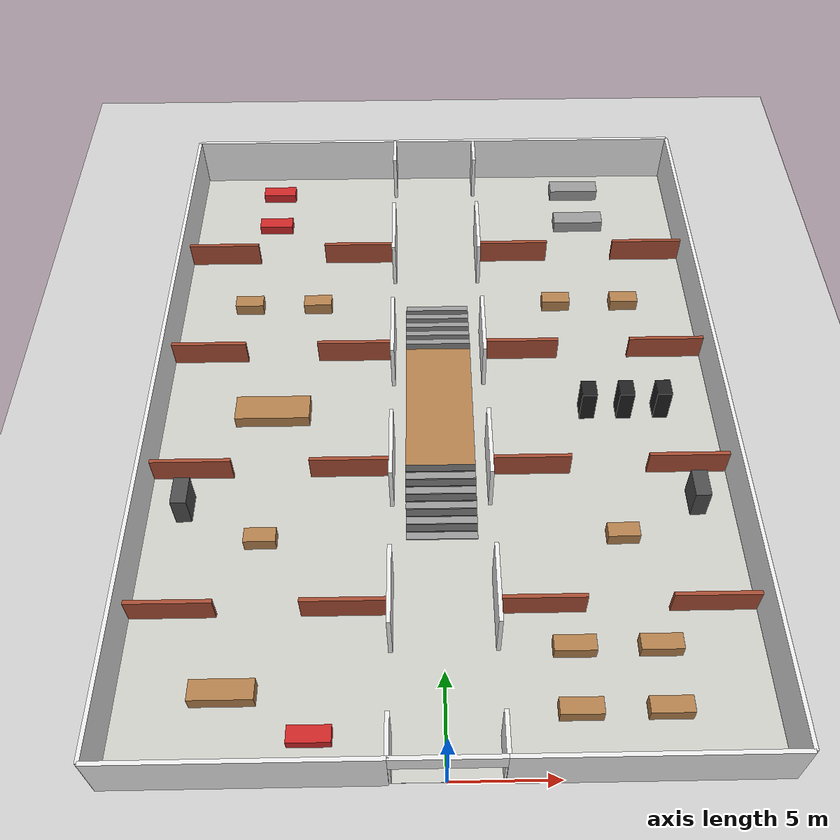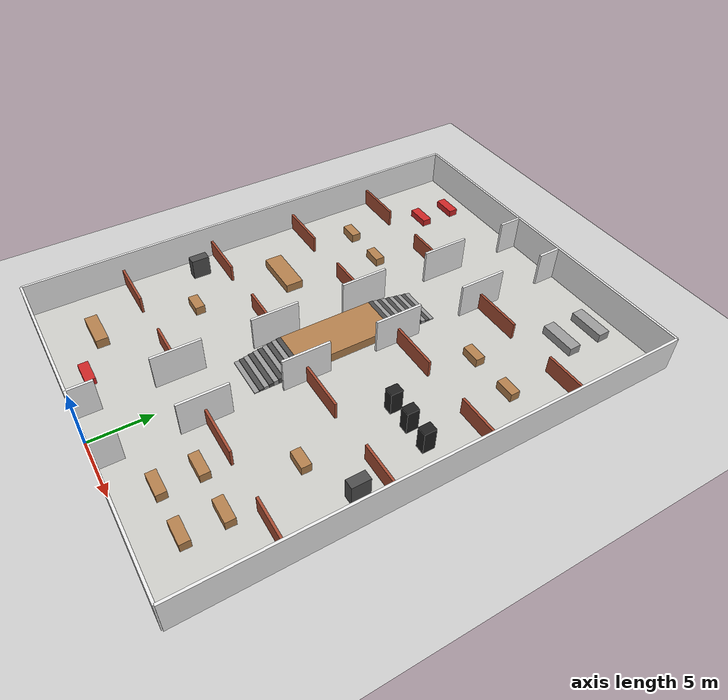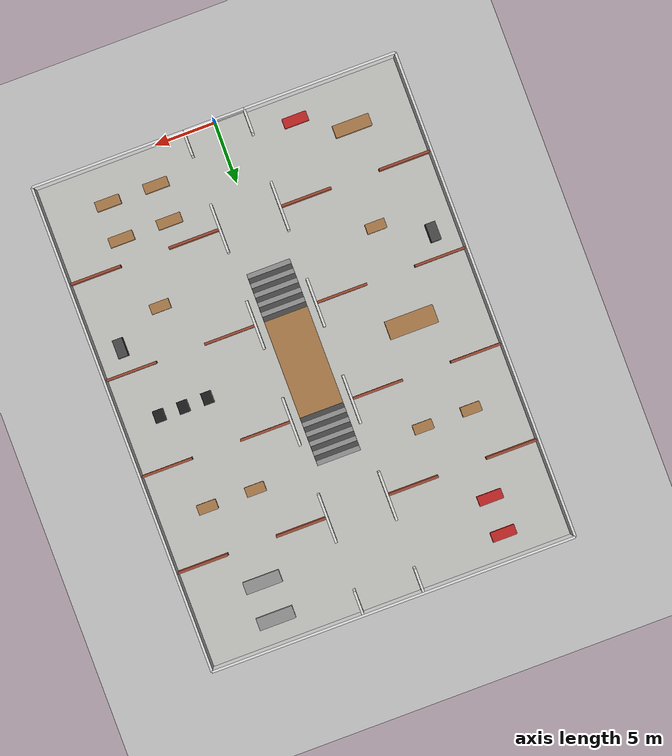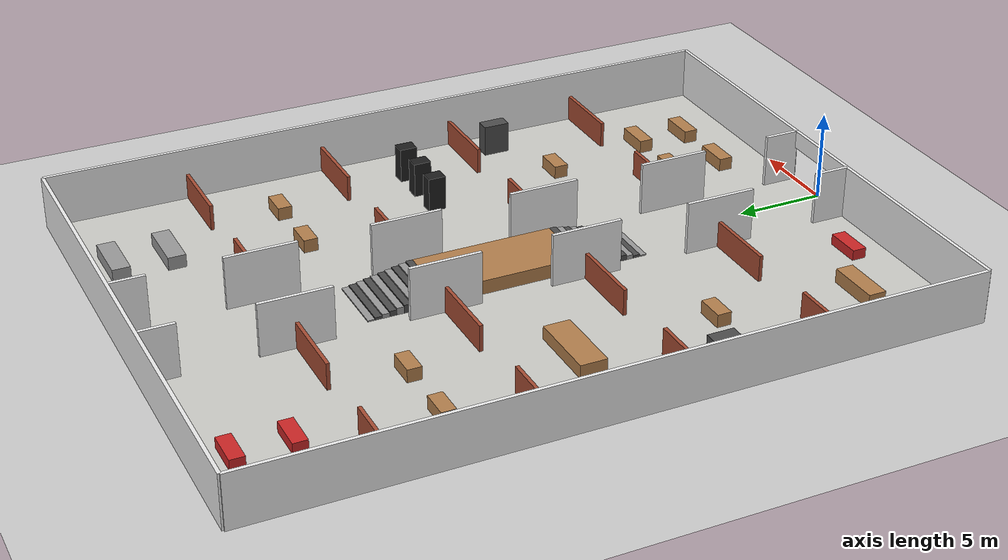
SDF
<sdf version='1.6'>
  <world name='default'>
    <!-- Lighting -->
    <light name='sun' type='directional'>
      <cast_shadows>0</cast_shadows>
      <pose>0 0 20 0 0 0</pose>
      <diffuse>0.95 0.95 0.95 1</diffuse>
      <specular>0.3 0.3 0.3 1</specular>
      <attenuation>
        <range>1000</range>
        <constant>0.9</constant>
        <linear>0.01</linear>
        <quadratic>0.001</quadratic>
      </attenuation>
      <direction>-0.3 0.3 -1.0</direction>
    </light>

    <!-- Ground plane -->
    <model name='ground_plane'>
      <static>1</static>
      <link name='link'>
        <collision name='collision'>
          <geometry><plane><normal>0 0 1</normal><size>200 200</size></plane></geometry>
          <surface><friction><ode><mu>100</mu><mu2>50</mu2></ode></friction></surface>
        </collision>
        <visual name='visual'>
          <cast_shadows>0</cast_shadows>
          <geometry><plane><normal>0 0 1</normal><size>200 200</size></plane></geometry>
          <material><script><uri>file://media/materials/scripts/gazebo.material</uri><name>Gazebo/Grey</name></script></material>
        </visual>
      </link>
    </model>

    <physics name='default_physics' default='0' type='ode'>
      <max_step_size>0.001</max_step_size>
      <real_time_factor>1</real_time_factor>
      <real_time_update_rate>1000</real_time_update_rate>
    </physics>

    <!-- EXPANDED OFFICE COMPLEX: 30m x 40m (10 Rooms) -->
    <model name='office_complex'>
      <static>1</static>
      <pose>0 0 0 0 0 0</pose>

      <!-- Office Floor -->
      <link name='office_floor'>
        <pose>0 20 0.005 0 0 0</pose>
        <visual name='vis'>
          <geometry><box><size>30 40 0.01</size></box></geometry>
          <material><script><name>Gazebo/CeilingTiled</name></script></material>
        </visual>
      </link>

      <!-- ==================== OUTER WALLS (3m high) ==================== -->
      <link name='wall_south_l'>
        <pose>-8.75 0 1.5 0 0 0</pose>
        <collision name='col'><geometry><box><size>12.5 0.2 3.0</size></box></geometry></collision>
        <visual name='vis'><geometry><box><size>12.5 0.2 3.0</size></box></geometry><material><script><name>Gazebo/White</name></script></material></visual>
      </link>
      <link name='wall_south_r'>
        <pose>8.75 0 1.5 0 0 0</pose>
        <collision name='col'><geometry><box><size>12.5 0.2 3.0</size></box></geometry></collision>
        <visual name='vis'><geometry><box><size>12.5 0.2 3.0</size></box></geometry><material><script><name>Gazebo/White</name></script></material></visual>
      </link>
      <link name='door_header'>
        <pose>0 0 2.5 0 0 0</pose>
        <collision name='col'><geometry><box><size>5.0 0.2 1.0</size></box></geometry></collision>
        <visual name='vis'><geometry><box><size>5.0 0.2 1.0</size></box></geometry><material><script><name>Gazebo/White</name></script></material></visual>
      </link>
      <link name='wall_north'>
        <pose>0 40 1.5 0 0 0</pose>
        <collision name='col'><geometry><box><size>30.0 0.2 3.0</size></box></geometry></collision>
        <visual name='vis'><geometry><box><size>30.0 0.2 3.0</size></box></geometry><material><script><name>Gazebo/White</name></script></material></visual>
      </link>
      <link name='wall_west'>
        <pose>-15 20 1.5 0 0 1.5708</pose>
        <collision name='col'><geometry><box><size>40.0 0.2 3.0</size></box></geometry></collision>
        <visual name='vis'><geometry><box><size>40.0 0.2 3.0</size></box></geometry><material><script><name>Gazebo/White</name></script></material></visual>
      </link>
      <link name='wall_east'>
        <pose>15 20 1.5 0 0 1.5708</pose>
        <collision name='col'><geometry><box><size>40.0 0.2 3.0</size></box></geometry></collision>
        <visual name='vis'><geometry><box><size>40.0 0.2 3.0</size></box></geometry><material><script><name>Gazebo/White</name></script></material></visual>
      </link>

      <!-- ==================== CORRIDOR WALLS ==================== -->
      <!-- Left (West) -->
      <link name='corr_l_1'><pose>-2.5 1 1.5 0 0 1.5708</pose><collision name='col'><geometry><box><size>2.0 0.2 3.0</size></box></geometry></collision><visual name='vis'><geometry><box><size>2.0 0.2 3.0</size></box></geometry><material><script><name>Gazebo/White</name></script></material></visual></link>
      <link name='corr_l_2'><pose>-2.5 8 1.5 0 0 1.5708</pose><collision name='col'><geometry><box><size>4.0 0.2 3.0</size></box></geometry></collision><visual name='vis'><geometry><box><size>4.0 0.2 3.0</size></box></geometry><material><script><name>Gazebo/White</name></script></material></visual></link>
      <link name='corr_l_3'><pose>-2.5 16 1.5 0 0 1.5708</pose><collision name='col'><geometry><box><size>4.0 0.2 3.0</size></box></geometry></collision><visual name='vis'><geometry><box><size>4.0 0.2 3.0</size></box></geometry><material><script><name>Gazebo/White</name></script></material></visual></link>
      <link name='corr_l_4'><pose>-2.5 24 1.5 0 0 1.5708</pose><collision name='col'><geometry><box><size>4.0 0.2 3.0</size></box></geometry></collision><visual name='vis'><geometry><box><size>4.0 0.2 3.0</size></box></geometry><material><script><name>Gazebo/White</name></script></material></visual></link>
      <link name='corr_l_5'><pose>-2.5 32 1.5 0 0 1.5708</pose><collision name='col'><geometry><box><size>4.0 0.2 3.0</size></box></geometry></collision><visual name='vis'><geometry><box><size>4.0 0.2 3.0</size></box></geometry><material><script><name>Gazebo/White</name></script></material></visual></link>
      <link name='corr_l_6'><pose>-2.5 39 1.5 0 0 1.5708</pose><collision name='col'><geometry><box><size>2.0 0.2 3.0</size></box></geometry></collision><visual name='vis'><geometry><box><size>2.0 0.2 3.0</size></box></geometry><material><script><name>Gazebo/White</name></script></material></visual></link>

      <!-- Right (East) -->
      <link name='corr_r_1'><pose>2.5 1 1.5 0 0 1.5708</pose><collision name='col'><geometry><box><size>2.0 0.2 3.0</size></box></geometry></collision><visual name='vis'><geometry><box><size>2.0 0.2 3.0</size></box></geometry><material><script><name>Gazebo/White</name></script></material></visual></link>
      <link name='corr_r_2'><pose>2.5 8 1.5 0 0 1.5708</pose><collision name='col'><geometry><box><size>4.0 0.2 3.0</size></box></geometry></collision><visual name='vis'><geometry><box><size>4.0 0.2 3.0</size></box></geometry><material><script><name>Gazebo/White</name></script></material></visual></link>
      <link name='corr_r_3'><pose>2.5 16 1.5 0 0 1.5708</pose><collision name='col'><geometry><box><size>4.0 0.2 3.0</size></box></geometry></collision><visual name='vis'><geometry><box><size>4.0 0.2 3.0</size></box></geometry><material><script><name>Gazebo/White</name></script></material></visual></link>
      <link name='corr_r_4'><pose>2.5 24 1.5 0 0 1.5708</pose><collision name='col'><geometry><box><size>4.0 0.2 3.0</size></box></geometry></collision><visual name='vis'><geometry><box><size>4.0 0.2 3.0</size></box></geometry><material><script><name>Gazebo/White</name></script></material></visual></link>
      <link name='corr_r_5'><pose>2.5 32 1.5 0 0 1.5708</pose><collision name='col'><geometry><box><size>4.0 0.2 3.0</size></box></geometry></collision><visual name='vis'><geometry><box><size>4.0 0.2 3.0</size></box></geometry><material><script><name>Gazebo/White</name></script></material></visual></link>
      <link name='corr_r_6'><pose>2.5 39 1.5 0 0 1.5708</pose><collision name='col'><geometry><box><size>2.0 0.2 3.0</size></box></geometry></collision><visual name='vis'><geometry><box><size>2.0 0.2 3.0</size></box></geometry><material><script><name>Gazebo/White</name></script></material></visual></link>

      <!-- ==================== CROSS WALLS (E-W) ==================== -->
      <link name='xwall_w8_l'><pose>-12.875 8 0.75 0 0 0</pose><collision name='col'><geometry><box><size>4.25 0.2 1.5</size></box></geometry></collision><visual name='vis'><geometry><box><size>4.25 0.2 1.5</size></box></geometry><material><script><name>Gazebo/Bricks</name></script></material></visual></link>
      <link name='xwall_w8_r'><pose>-4.625 8 0.75 0 0 0</pose><collision name='col'><geometry><box><size>4.25 0.2 1.5</size></box></geometry></collision><visual name='vis'><geometry><box><size>4.25 0.2 1.5</size></box></geometry><material><script><name>Gazebo/Bricks</name></script></material></visual></link>
      <link name='xwall_e8_l'><pose>4.625 8 0.75 0 0 0</pose><collision name='col'><geometry><box><size>4.25 0.2 1.5</size></box></geometry></collision><visual name='vis'><geometry><box><size>4.25 0.2 1.5</size></box></geometry><material><script><name>Gazebo/Bricks</name></script></material></visual></link>
      <link name='xwall_e8_r'><pose>12.875 8 0.75 0 0 0</pose><collision name='col'><geometry><box><size>4.25 0.2 1.5</size></box></geometry></collision><visual name='vis'><geometry><box><size>4.25 0.2 1.5</size></box></geometry><material><script><name>Gazebo/Bricks</name></script></material></visual></link>

      <link name='xwall_w16_l'><pose>-12.875 16 0.75 0 0 0</pose><collision name='col'><geometry><box><size>4.25 0.2 1.5</size></box></geometry></collision><visual name='vis'><geometry><box><size>4.25 0.2 1.5</size></box></geometry><material><script><name>Gazebo/Bricks</name></script></material></visual></link>
      <link name='xwall_w16_r'><pose>-4.625 16 0.75 0 0 0</pose><collision name='col'><geometry><box><size>4.25 0.2 1.5</size></box></geometry></collision><visual name='vis'><geometry><box><size>4.25 0.2 1.5</size></box></geometry><material><script><name>Gazebo/Bricks</name></script></material></visual></link>
      <link name='xwall_e16_l'><pose>4.625 16 0.75 0 0 0</pose><collision name='col'><geometry><box><size>4.25 0.2 1.5</size></box></geometry></collision><visual name='vis'><geometry><box><size>4.25 0.2 1.5</size></box></geometry><material><script><name>Gazebo/Bricks</name></script></material></visual></link>
      <link name='xwall_e16_r'><pose>12.875 16 0.75 0 0 0</pose><collision name='col'><geometry><box><size>4.25 0.2 1.5</size></box></geometry></collision><visual name='vis'><geometry><box><size>4.25 0.2 1.5</size></box></geometry><material><script><name>Gazebo/Bricks</name></script></material></visual></link>

      <link name='xwall_w24_l'><pose>-12.875 24 0.75 0 0 0</pose><collision name='col'><geometry><box><size>4.25 0.2 1.5</size></box></geometry></collision><visual name='vis'><geometry><box><size>4.25 0.2 1.5</size></box></geometry><material><script><name>Gazebo/Bricks</name></script></material></visual></link>
      <link name='xwall_w24_r'><pose>-4.625 24 0.75 0 0 0</pose><collision name='col'><geometry><box><size>4.25 0.2 1.5</size></box></geometry></collision><visual name='vis'><geometry><box><size>4.25 0.2 1.5</size></box></geometry><material><script><name>Gazebo/Bricks</name></script></material></visual></link>
      <link name='xwall_e24_l'><pose>4.625 24 0.75 0 0 0</pose><collision name='col'><geometry><box><size>4.25 0.2 1.5</size></box></geometry></collision><visual name='vis'><geometry><box><size>4.25 0.2 1.5</size></box></geometry><material><script><name>Gazebo/Bricks</name></script></material></visual></link>
      <link name='xwall_e24_r'><pose>12.875 24 0.75 0 0 0</pose><collision name='col'><geometry><box><size>4.25 0.2 1.5</size></box></geometry></collision><visual name='vis'><geometry><box><size>4.25 0.2 1.5</size></box></geometry><material><script><name>Gazebo/Bricks</name></script></material></visual></link>

      <link name='xwall_w32_l'><pose>-12.875 32 0.75 0 0 0</pose><collision name='col'><geometry><box><size>4.25 0.2 1.5</size></box></geometry></collision><visual name='vis'><geometry><box><size>4.25 0.2 1.5</size></box></geometry><material><script><name>Gazebo/Bricks</name></script></material></visual></link>
      <link name='xwall_w32_r'><pose>-4.625 32 0.75 0 0 0</pose><collision name='col'><geometry><box><size>4.25 0.2 1.5</size></box></geometry></collision><visual name='vis'><geometry><box><size>4.25 0.2 1.5</size></box></geometry><material><script><name>Gazebo/Bricks</name></script></material></visual></link>
      <link name='xwall_e32_l'><pose>4.625 32 0.75 0 0 0</pose><collision name='col'><geometry><box><size>4.25 0.2 1.5</size></box></geometry></collision><visual name='vis'><geometry><box><size>4.25 0.2 1.5</size></box></geometry><material><script><name>Gazebo/Bricks</name></script></material></visual></link>
      <link name='xwall_e32_r'><pose>12.875 32 0.75 0 0 0</pose><collision name='col'><geometry><box><size>4.25 0.2 1.5</size></box></geometry></collision><visual name='vis'><geometry><box><size>4.25 0.2 1.5</size></box></geometry><material><script><name>Gazebo/Bricks</name></script></material></visual></link>

      <!-- ==================== ROOM FURNITURE ==================== -->

      <!-- West Wing (Rooms 1-5) -->
      <!-- Room 1 (Reception) -->
      <link name='reception_desk'><pose>-10 4 0.4 0 0 0</pose><collision name='col'><geometry><box><size>3.0 1.0 0.8</size></box></geometry></collision><visual name='vis'><geometry><box><size>3.0 1.0 0.8</size></box></geometry><material><script><name>Gazebo/Wood</name></script></material></visual></link>
      <link name='reception_couch'><pose>-6 2 0.3 0 0 0</pose><collision name='col'><geometry><box><size>2.0 0.8 0.6</size></box></geometry></collision><visual name='vis'><geometry><box><size>2.0 0.8 0.6</size></box></geometry><material><script><name>Gazebo/Red</name></script></material></visual></link>

      <!-- Room 2 (Office 1) -->
      <link name='r2_desk'><pose>-9 12 0.375 0 0 0</pose><collision name='col'><geometry><box><size>1.6 0.8 0.75</size></box></geometry></collision><visual name='vis'><geometry><box><size>1.6 0.8 0.75</size></box></geometry><material><script><name>Gazebo/Wood</name></script></material></visual></link>
      <link name='r2_cabinet'><pose>-13 14 0.9 0 0 0</pose><collision name='col'><geometry><box><size>0.8 1.5 1.8</size></box></geometry></collision><visual name='vis'><geometry><box><size>0.8 1.5 1.8</size></box></geometry><material><script><name>Gazebo/DarkGrey</name></script></material></visual></link>

      <!-- Room 3 (Conference Room) -->
      <link name='conf_table'><pose>-9 20 0.375 0 0 0</pose><collision name='col'><geometry><box><size>4.0 1.5 0.75</size></box></geometry></collision><visual name='vis'><geometry><box><size>4.0 1.5 0.75</size></box></geometry><material><script><name>Gazebo/Wood</name></script></material></visual></link>

      <!-- Room 4 (Office 2) -->
      <link name='r4_desk1'><pose>-11 28 0.375 0 0 0</pose><collision name='col'><geometry><box><size>1.6 0.8 0.75</size></box></geometry></collision><visual name='vis'><geometry><box><size>1.6 0.8 0.75</size></box></geometry><material><script><name>Gazebo/Wood</name></script></material></visual></link>
      <link name='r4_desk2'><pose>-7 28 0.375 0 0 0</pose><collision name='col'><geometry><box><size>1.6 0.8 0.75</size></box></geometry></collision><visual name='vis'><geometry><box><size>1.6 0.8 0.75</size></box></geometry><material><script><name>Gazebo/Wood</name></script></material></visual></link>

      <!-- Room 5 (Lounge) -->
      <link name='lounge_couch1'><pose>-10 35 0.3 0 0 0</pose><collision name='col'><geometry><box><size>2.0 0.8 0.6</size></box></geometry></collision><visual name='vis'><geometry><box><size>2.0 0.8 0.6</size></box></geometry><material><script><name>Gazebo/Red</name></script></material></visual></link>
      <link name='lounge_couch2'><pose>-10 38 0.3 0 0 0</pose><collision name='col'><geometry><box><size>2.0 0.8 0.6</size></box></geometry></collision><visual name='vis'><geometry><box><size>2.0 0.8 0.6</size></box></geometry><material><script><name>Gazebo/Red</name></script></material></visual></link>

      <!-- East Wing (Rooms 6-10) -->
      <!-- Room 6 (Open Workspace) -->
      <link name='r6_desk1'><pose>6 3 0.375 0 0 0</pose><collision name='col'><geometry><box><size>2.0 0.8 0.75</size></box></geometry></collision><visual name='vis'><geometry><box><size>2.0 0.8 0.75</size></box></geometry><material><script><name>Gazebo/Wood</name></script></material></visual></link>
      <link name='r6_desk2'><pose>10 3 0.375 0 0 0</pose><collision name='col'><geometry><box><size>2.0 0.8 0.75</size></box></geometry></collision><visual name='vis'><geometry><box><size>2.0 0.8 0.75</size></box></geometry><material><script><name>Gazebo/Wood</name></script></material></visual></link>
      <link name='r6_desk3'><pose>6 6 0.375 0 0 0</pose><collision name='col'><geometry><box><size>2.0 0.8 0.75</size></box></geometry></collision><visual name='vis'><geometry><box><size>2.0 0.8 0.75</size></box></geometry><material><script><name>Gazebo/Wood</name></script></material></visual></link>
      <link name='r6_desk4'><pose>10 6 0.375 0 0 0</pose><collision name='col'><geometry><box><size>2.0 0.8 0.75</size></box></geometry></collision><visual name='vis'><geometry><box><size>2.0 0.8 0.75</size></box></geometry><material><script><name>Gazebo/Wood</name></script></material></visual></link>

      <!-- Room 7 (Office 3) -->
      <link name='r7_desk'><pose>9 12 0.375 0 0 0</pose><collision name='col'><geometry><box><size>1.6 0.8 0.75</size></box></geometry></collision><visual name='vis'><geometry><box><size>1.6 0.8 0.75</size></box></geometry><material><script><name>Gazebo/Wood</name></script></material></visual></link>
      <link name='r7_cabinet'><pose>13 14 0.9 0 0 0</pose><collision name='col'><geometry><box><size>0.8 1.5 1.8</size></box></geometry></collision><visual name='vis'><geometry><box><size>0.8 1.5 1.8</size></box></geometry><material><script><name>Gazebo/DarkGrey</name></script></material></visual></link>

      <!-- Room 8 (Server Room) -->
      <link name='server_1'><pose>8 20 1.0 0 0 0</pose><collision name='col'><geometry><box><size>0.8 1.0 2.0</size></box></geometry></collision><visual name='vis'><geometry><box><size>0.8 1.0 2.0</size></box></geometry><material><script><name>Gazebo/Black</name></script></material></visual></link>
      <link name='server_2'><pose>10 20 1.0 0 0 0</pose><collision name='col'><geometry><box><size>0.8 1.0 2.0</size></box></geometry></collision><visual name='vis'><geometry><box><size>0.8 1.0 2.0</size></box></geometry><material><script><name>Gazebo/Black</name></script></material></visual></link>
      <link name='server_3'><pose>12 20 1.0 0 0 0</pose><collision name='col'><geometry><box><size>0.8 1.0 2.0</size></box></geometry></collision><visual name='vis'><geometry><box><size>0.8 1.0 2.0</size></box></geometry><material><script><name>Gazebo/Black</name></script></material></visual></link>

      <!-- Room 9 (Office 4) -->
      <link name='r9_desk1'><pose>7 28 0.375 0 0 0</pose><collision name='col'><geometry><box><size>1.6 0.8 0.75</size></box></geometry></collision><visual name='vis'><geometry><box><size>1.6 0.8 0.75</size></box></geometry><material><script><name>Gazebo/Wood</name></script></material></visual></link>
      <link name='r9_desk2'><pose>11 28 0.375 0 0 0</pose><collision name='col'><geometry><box><size>1.6 0.8 0.75</size></box></geometry></collision><visual name='vis'><geometry><box><size>1.6 0.8 0.75</size></box></geometry><material><script><name>Gazebo/Wood</name></script></material></visual></link>

      <!-- Room 10 (Lab) -->
      <link name='lab_table1'><pose>9 35 0.375 0 0 0</pose><collision name='col'><geometry><box><size>3.0 1.0 0.75</size></box></geometry></collision><visual name='vis'><geometry><box><size>3.0 1.0 0.75</size></box></geometry><material><script><name>Gazebo/Grey</name></script></material></visual></link>
      <link name='lab_table2'><pose>9 38 0.375 0 0 0</pose><collision name='col'><geometry><box><size>3.0 1.0 0.75</size></box></geometry></collision><visual name='vis'><geometry><box><size>3.0 1.0 0.75</size></box></geometry><material><script><name>Gazebo/Grey</name></script></material></visual></link>

      <!-- ==================== CENTRAL BRIDGE STAIRCASE ==================== -->
      <!-- Ascending Stairs -->
      <link name='bridge_s1_asc'><pose>0 12.2 0.04 0 0 0</pose><collision name='col'><geometry><box><size>3.6 0.4 0.08</size></box></geometry></collision><visual name='vis'><geometry><box><size>3.6 0.4 0.08</size></box></geometry><material><script><name>Gazebo/Grey</name></script></material></visual></link>
      <link name='bridge_s2_asc'><pose>0 12.6 0.08 0 0 0</pose><collision name='col'><geometry><box><size>3.6 0.4 0.16</size></box></geometry></collision><visual name='vis'><geometry><box><size>3.6 0.4 0.16</size></box></geometry><material><script><name>Gazebo/DarkGrey</name></script></material></visual></link>
      <link name='bridge_s3_asc'><pose>0 13.0 0.12 0 0 0</pose><collision name='col'><geometry><box><size>3.6 0.4 0.24</size></box></geometry></collision><visual name='vis'><geometry><box><size>3.6 0.4 0.24</size></box></geometry><material><script><name>Gazebo/Grey</name></script></material></visual></link>
      <link name='bridge_s4_asc'><pose>0 13.4 0.16 0 0 0</pose><collision name='col'><geometry><box><size>3.6 0.4 0.32</size></box></geometry></collision><visual name='vis'><geometry><box><size>3.6 0.4 0.32</size></box></geometry><material><script><name>Gazebo/DarkGrey</name></script></material></visual></link>
      <link name='bridge_s5_asc'><pose>0 13.8 0.20 0 0 0</pose><collision name='col'><geometry><box><size>3.6 0.4 0.40</size></box></geometry></collision><visual name='vis'><geometry><box><size>3.6 0.4 0.40</size></box></geometry><material><script><name>Gazebo/Grey</name></script></material></visual></link>
      <link name='bridge_s6_asc'><pose>0 14.2 0.24 0 0 0</pose><collision name='col'><geometry><box><size>3.6 0.4 0.48</size></box></geometry></collision><visual name='vis'><geometry><box><size>3.6 0.4 0.48</size></box></geometry><material><script><name>Gazebo/DarkGrey</name></script></material></visual></link>
      <link name='bridge_s7_asc'><pose>0 14.6 0.28 0 0 0</pose><collision name='col'><geometry><box><size>3.6 0.4 0.56</size></box></geometry></collision><visual name='vis'><geometry><box><size>3.6 0.4 0.56</size></box></geometry><material><script><name>Gazebo/Grey</name></script></material></visual></link>
      <link name='bridge_s8_asc'><pose>0 15.0 0.32 0 0 0</pose><collision name='col'><geometry><box><size>3.6 0.4 0.64</size></box></geometry></collision><visual name='vis'><geometry><box><size>3.6 0.4 0.64</size></box></geometry><material><script><name>Gazebo/DarkGrey</name></script></material></visual></link>
      <link name='bridge_s9_asc'><pose>0 15.4 0.36 0 0 0</pose><collision name='col'><geometry><box><size>3.6 0.4 0.72</size></box></geometry></collision><visual name='vis'><geometry><box><size>3.6 0.4 0.72</size></box></geometry><material><script><name>Gazebo/Grey</name></script></material></visual></link>
      <link name='bridge_s10_asc'><pose>0 15.8 0.40 0 0 0</pose><collision name='col'><geometry><box><size>3.6 0.4 0.80</size></box></geometry></collision><visual name='vis'><geometry><box><size>3.6 0.4 0.80</size></box></geometry><material><script><name>Gazebo/DarkGrey</name></script></material></visual></link>

      <!-- Central Platform -->
      <link name='bridge_platform'><pose>0 20.0 0.40 0 0 0</pose><collision name='col'><geometry><box><size>3.6 8.0 0.80</size></box></geometry></collision><visual name='vis'><geometry><box><size>3.6 8.0 0.80</size></box></geometry><material><script><name>Gazebo/WoodFloor</name></script></material></visual></link>

      <!-- Descending Stairs -->
      <link name='bridge_s10_desc'><pose>0 24.2 0.40 0 0 0</pose><collision name='col'><geometry><box><size>3.6 0.4 0.80</size></box></geometry></collision><visual name='vis'><geometry><box><size>3.6 0.4 0.80</size></box></geometry><material><script><name>Gazebo/DarkGrey</name></script></material></visual></link>
      <link name='bridge_s9_desc'><pose>0 24.6 0.36 0 0 0</pose><collision name='col'><geometry><box><size>3.6 0.4 0.72</size></box></geometry></collision><visual name='vis'><geometry><box><size>3.6 0.4 0.72</size></box></geometry><material><script><name>Gazebo/Grey</name></script></material></visual></link>
      <link name='bridge_s8_desc'><pose>0 25.0 0.32 0 0 0</pose><collision name='col'><geometry><box><size>3.6 0.4 0.64</size></box></geometry></collision><visual name='vis'><geometry><box><size>3.6 0.4 0.64</size></box></geometry><material><script><name>Gazebo/DarkGrey</name></script></material></visual></link>
      <link name='bridge_s7_desc'><pose>0 25.4 0.28 0 0 0</pose><collision name='col'><geometry><box><size>3.6 0.4 0.56</size></box></geometry></collision><visual name='vis'><geometry><box><size>3.6 0.4 0.56</size></box></geometry><material><script><name>Gazebo/Grey</name></script></material></visual></link>
      <link name='bridge_s6_desc'><pose>0 25.8 0.24 0 0 0</pose><collision name='col'><geometry><box><size>3.6 0.4 0.48</size></box></geometry></collision><visual name='vis'><geometry><box><size>3.6 0.4 0.48</size></box></geometry><material><script><name>Gazebo/DarkGrey</name></script></material></visual></link>
      <link name='bridge_s5_desc'><pose>0 26.2 0.20 0 0 0</pose><collision name='col'><geometry><box><size>3.6 0.4 0.40</size></box></geometry></collision><visual name='vis'><geometry><box><size>3.6 0.4 0.40</size></box></geometry><material><script><name>Gazebo/Grey</name></script></material></visual></link>
      <link name='bridge_s4_desc'><pose>0 26.6 0.16 0 0 0</pose><collision name='col'><geometry><box><size>3.6 0.4 0.32</size></box></geometry></collision><visual name='vis'><geometry><box><size>3.6 0.4 0.32</size></box></geometry><material><script><name>Gazebo/DarkGrey</name></script></material></visual></link>
      <link name='bridge_s3_desc'><pose>0 27.0 0.12 0 0 0</pose><collision name='col'><geometry><box><size>3.6 0.4 0.24</size></box></geometry></collision><visual name='vis'><geometry><box><size>3.6 0.4 0.24</size></box></geometry><material><script><name>Gazebo/Grey</name></script></material></visual></link>
      <link name='bridge_s2_desc'><pose>0 27.4 0.08 0 0 0</pose><collision name='col'><geometry><box><size>3.6 0.4 0.16</size></box></geometry></collision><visual name='vis'><geometry><box><size>3.6 0.4 0.16</size></box></geometry><material><script><name>Gazebo/DarkGrey</name></script></material></visual></link>
      <link name='bridge_s1_desc'><pose>0 27.8 0.04 0 0 0</pose><collision name='col'><geometry><box><size>3.6 0.4 0.08</size></box></geometry></collision><visual name='vis'><geometry><box><size>3.6 0.4 0.08</size></box></geometry><material><script><name>Gazebo/Grey</name></script></material></visual></link>

    </model>

    <!-- Camera: zoomed out to see entire 30x40m building -->
    <gui fullscreen='0'>
      <camera name='user_camera'>
        <pose frame=''>0.0 -12.0 40.0 0.0 0.75 1.5708</pose>
        <view_controller>orbit</view_controller>
        <projection_type>perspective</projection_type>
      </camera>
    </gui>
  </world>
</sdf>
